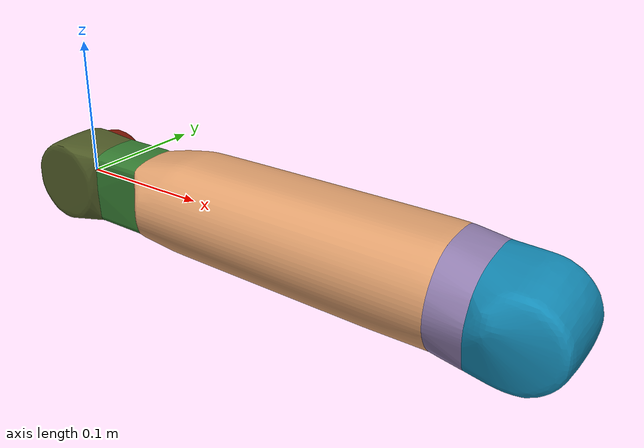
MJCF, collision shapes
<mujoco model="arm_link_hr0">
  <default>
    <default class="visual">
      <geom group="2" type="mesh" contype="0" conaffinity="0"/>
    </default>
    <default class="collision">
      <geom group="3" type="mesh"/>
    </default>
  </default>
  <asset>
    <mesh file="arm_link_hr0.obj"/>
    <mesh file="arm_link_hr0_collision_0.obj"/>
    <mesh file="arm_link_hr0_collision_1.obj"/>
    <mesh file="arm_link_hr0_collision_2.obj"/>
    <mesh file="arm_link_hr0_collision_3.obj"/>
    <mesh file="arm_link_hr0_collision_4.obj"/>
    <mesh file="arm_link_hr0_collision_5.obj"/>
    <mesh file="arm_link_hr0_collision_6.obj"/>
  </asset>
  <worldbody>
    <body name="arm_link_hr0">
      <geom mesh="arm_link_hr0" class="visual"/>
      <geom mesh="arm_link_hr0_collision_0" rgba="0.19853312622895503 0.4692130292639135 0.1858185979674678 1" class="collision"/>
      <geom mesh="arm_link_hr0_collision_1" rgba="0.07818492582321324 0.5463844209637625 0.7144051374997178 1" class="collision"/>
      <geom mesh="arm_link_hr0_collision_2" rgba="0.5398037723725068 0.10222614554792142 0.035095669212096614 1" class="collision"/>
      <geom mesh="arm_link_hr0_collision_3" rgba="0.30008552420004175 0.3442183804714628 0.1466268786789 1" class="collision"/>
      <geom mesh="arm_link_hr0_collision_4" rgba="0.8772050521771976 0.6261927794400888 0.4282455214723171 1" class="collision"/>
      <geom mesh="arm_link_hr0_collision_5" rgba="0.7859301396098733 0.49191099465578836 0.17273966451396827 1" class="collision"/>
      <geom mesh="arm_link_hr0_collision_6" rgba="0.5653752986691744 0.49131661892867884 0.6809219226276436 1" class="collision"/>
    </body>
  </worldbody>
</mujoco>
